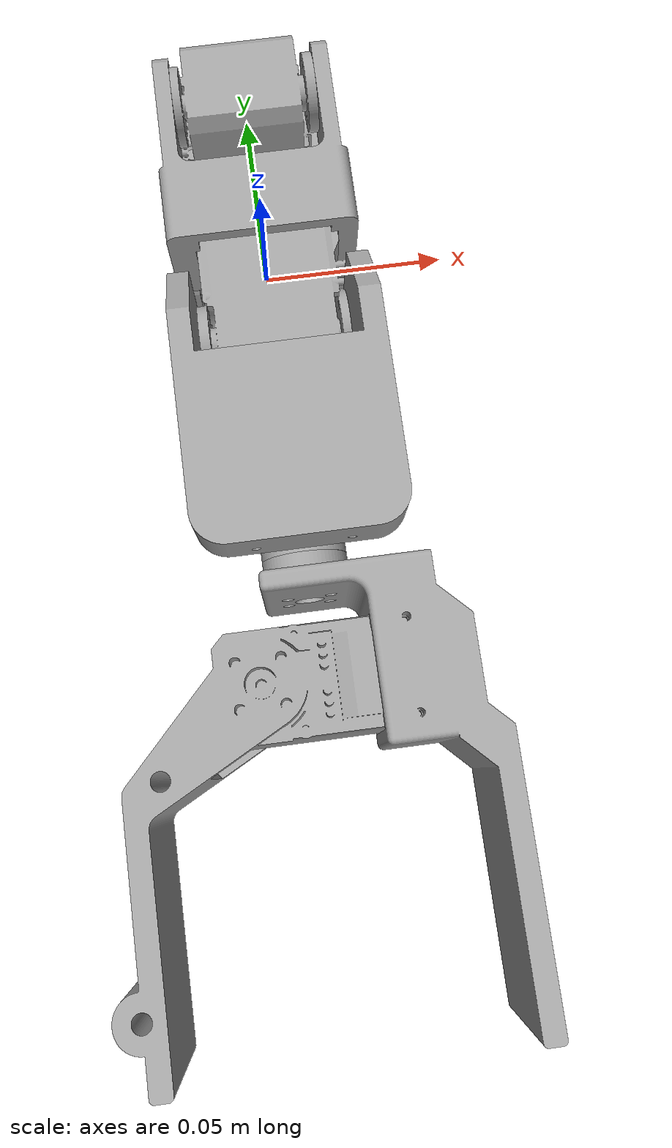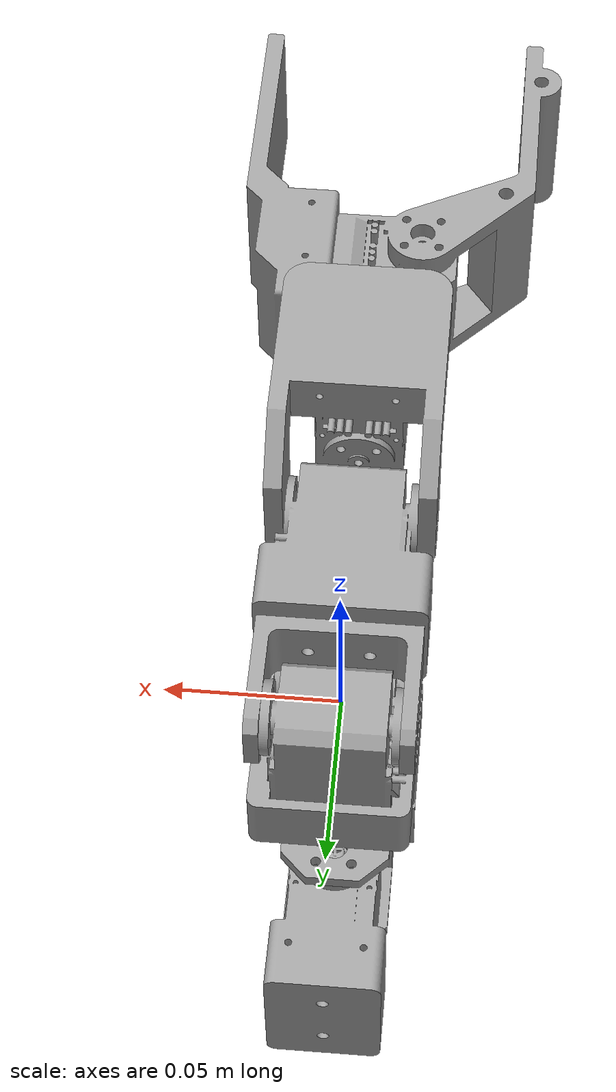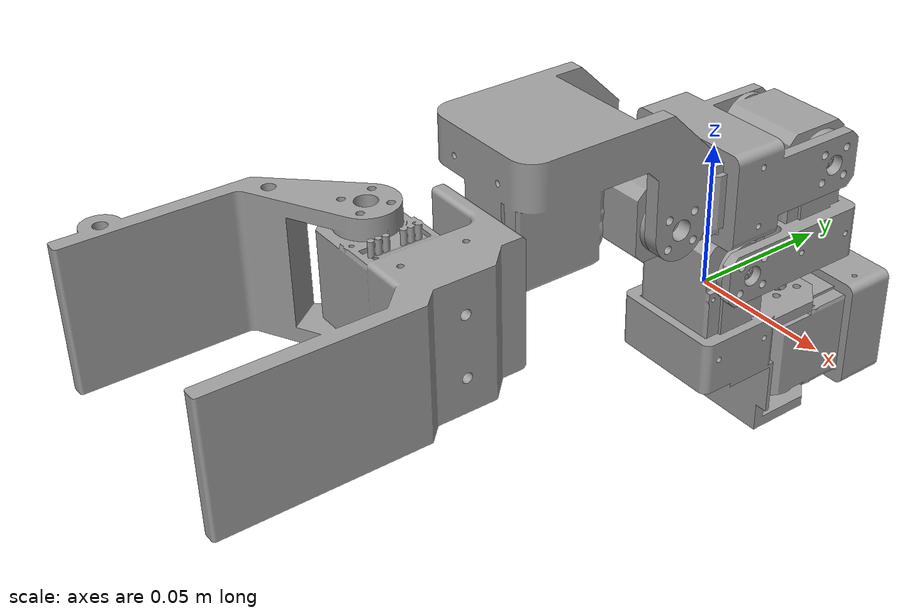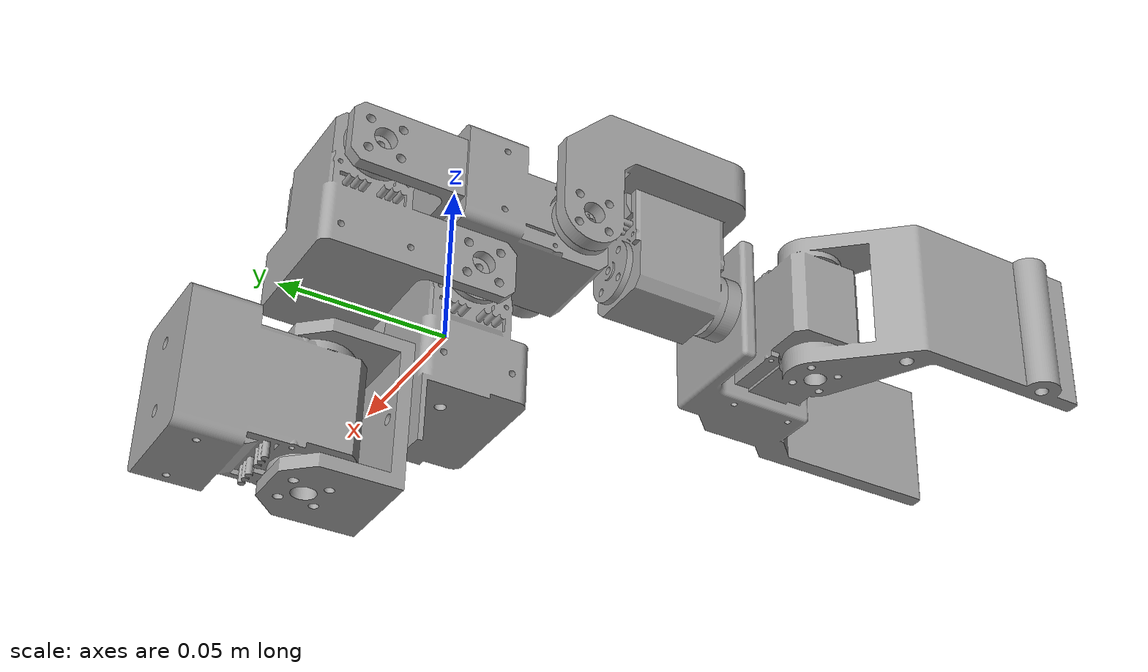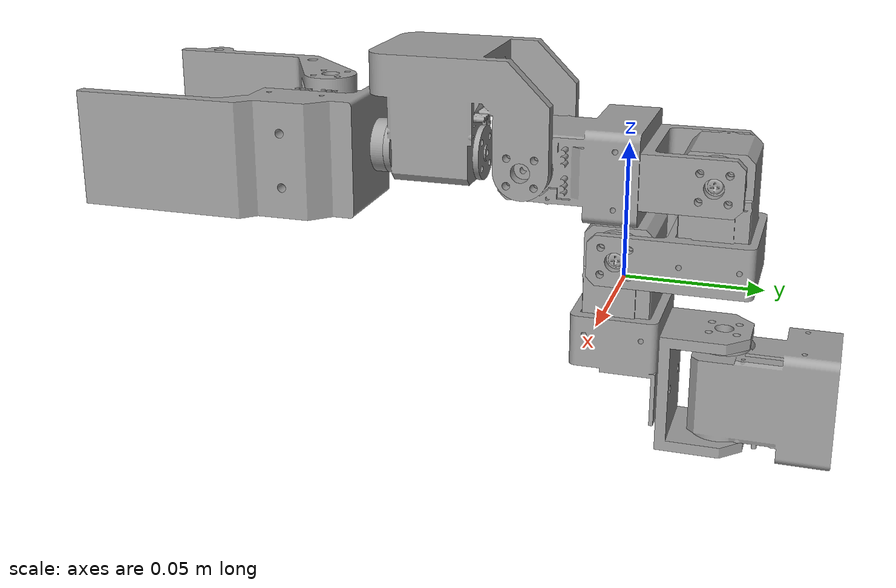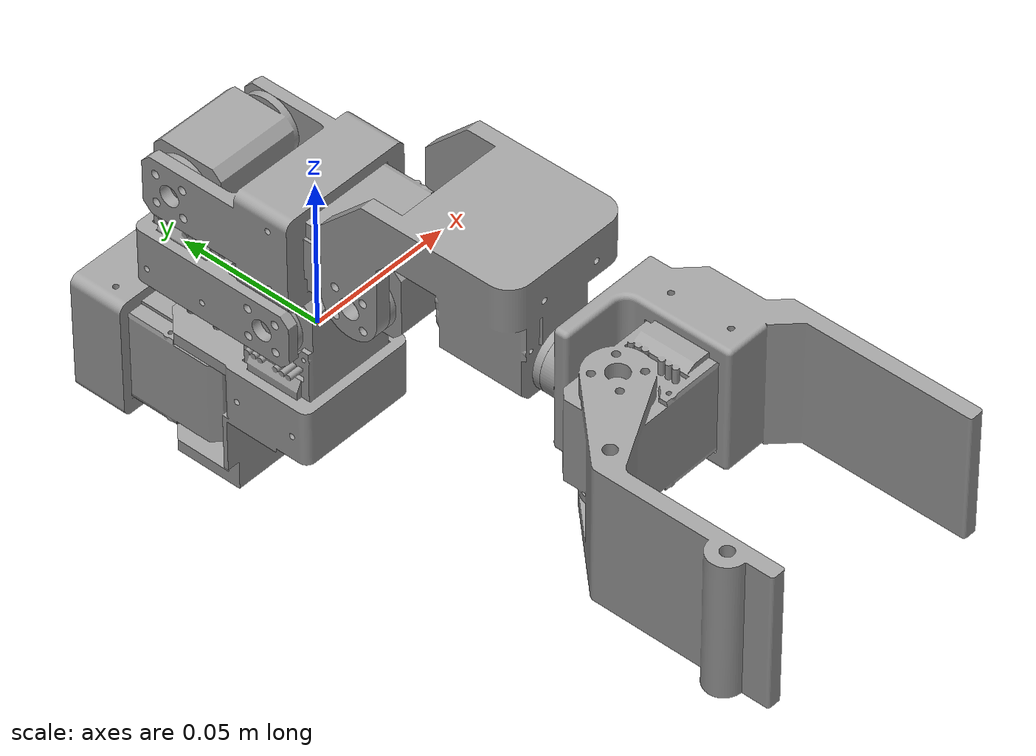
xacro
<?xml version="1.0" ?>
<robot name="arm_main" xmlns:xacro="http://www.ros.org/wiki/xacro">

<xacro:include filename="/home/keigo/komarm/urdf/materials.xacro" />
<xacro:include filename="/home/keigo/komarm/urdf/arm_main.trans" />
<link name="base_link">
  <inertial>
    <origin xyz="-0.0013499999845841886 0.05547364405613593 -0.03925880078129778" rpy="0 0 0"/>
    <mass value="0.3900830776668987"/>
    <inertia ixx="0.000131" iyy="7.1e-05" izz="0.000111" ixy="-0.0" iyz="2e-06" ixz="0.0"/>
  </inertial>
  <visual>
    <origin xyz="0 0 0" rpy="0 0 0"/>
    <geometry>
      <mesh filename="package://arm_main_description/meshes/base_link.stl" scale="0.001 0.001 0.001"/>
    </geometry>
    <material name="steel_satin"/>
  </visual>
  <collision>
    <origin xyz="0 0 0" rpy="0 0 0"/>
    <geometry>
      <mesh filename="package://arm_main_description/meshes/base_link.stl" scale="0.001 0.001 0.001"/>
    </geometry>
  </collision>
</link>

<link name="servo_holder2_v9_1">
  <inertial>
    <origin xyz="-0.022087999236917965 -0.042450935490717844 1.2480391720082196e-11" rpy="0 0 0"/>
    <mass value="0.4815312282713089"/>
    <inertia ixx="0.000189" iyy="0.000107" izz="0.000233" ixy="1e-06" iyz="-0.0" ixz="-0.0"/>
  </inertial>
  <visual>
    <origin xyz="-0.0217 -0.0324 -0.04195" rpy="0 0 0"/>
    <geometry>
      <mesh filename="package://arm_main_description/meshes/servo_holder2_v9_1.stl" scale="0.001 0.001 0.001"/>
    </geometry>
    <material name="steel_satin"/>
  </visual>
  <collision>
    <origin xyz="-0.0217 -0.0324 -0.04195" rpy="0 0 0"/>
    <geometry>
      <mesh filename="package://arm_main_description/meshes/servo_holder2_v9_1.stl" scale="0.001 0.001 0.001"/>
    </geometry>
  </collision>
</link>

<link name="hand_rotation_v13_4">
  <inertial>
    <origin xyz="-0.023199999989310653 -0.03180704370383808 0.018913049005446277" rpy="0 0 0"/>
    <mass value="0.49875676728406393"/>
    <inertia ixx="0.000221" iyy="0.000177" izz="0.0002" ixy="-0.0" iyz="7e-06" ixz="-0.0"/>
  </inertial>
  <visual>
    <origin xyz="-0.0227 0.0338 -0.04195" rpy="0 0 0"/>
    <geometry>
      <mesh filename="package://arm_main_description/meshes/hand_rotation_v13_4.stl" scale="0.001 0.001 0.001"/>
    </geometry>
    <material name="steel_satin"/>
  </visual>
  <collision>
    <origin xyz="-0.0227 0.0338 -0.04195" rpy="0 0 0"/>
    <geometry>
      <mesh filename="package://arm_main_description/meshes/hand_rotation_v13_4.stl" scale="0.001 0.001 0.001"/>
    </geometry>
  </collision>
</link>

<link name="hand_v17_1">
  <inertial>
    <origin xyz="0.0018876663935760566 -0.04171122715355233 1.0007712861637152e-05" rpy="0 0 0"/>
    <mass value="0.8585184504197826"/>
    <inertia ixx="0.000709" iyy="0.000757" izz="0.001205" ixy="-0.000142" iyz="-2e-06" ixz="-8e-06"/>
  </inertial>
  <visual>
    <origin xyz="0.0005 0.0892 -0.04195" rpy="0 0 0"/>
    <geometry>
      <mesh filename="package://arm_main_description/meshes/hand_v17_1.stl" scale="0.001 0.001 0.001"/>
    </geometry>
    <material name="steel_satin"/>
  </visual>
  <collision>
    <origin xyz="0.0005 0.0892 -0.04195" rpy="0 0 0"/>
    <geometry>
      <mesh filename="package://arm_main_description/meshes/hand_v17_1.stl" scale="0.001 0.001 0.001"/>
    </geometry>
  </collision>
</link>

<link name="servo_holder_v23_3">
  <inertial>
    <origin xyz="-0.021805779723410443 0.030701332587508144 0.01143066713838994" rpy="0 0 0"/>
    <mass value="0.39894172696668956"/>
    <inertia ixx="0.000121" iyy="0.000134" izz="9.8e-05" ixy="0.0" iyz="-8e-06" ixz="1e-06"/>
  </inertial>
  <visual>
    <origin xyz="-0.0212 -0.0 -0.0125" rpy="0 0 0"/>
    <geometry>
      <mesh filename="package://arm_main_description/meshes/servo_holder_v23_3.stl" scale="0.001 0.001 0.001"/>
    </geometry>
    <material name="steel_satin"/>
  </visual>
  <collision>
    <origin xyz="-0.0212 -0.0 -0.0125" rpy="0 0 0"/>
    <geometry>
      <mesh filename="package://arm_main_description/meshes/servo_holder_v23_3.stl" scale="0.001 0.001 0.001"/>
    </geometry>
  </collision>
</link>

<link name="base_mount_v2_1">
  <inertial>
    <origin xyz="0.00023028138914044723 -0.03219987847844947 0.0037687224019273234" rpy="0 0 0"/>
    <mass value="0.4932742844219664"/>
    <inertia ixx="0.000272" iyy="0.000248" izz="0.000132" ixy="1e-06" iyz="6e-05" ixz="-2e-06"/>
  </inertial>
  <visual>
    <origin xyz="0.00135 -0.0369 0.0165" rpy="0 0 0"/>
    <geometry>
      <mesh filename="package://arm_main_description/meshes/base_mount_v2_1.stl" scale="0.001 0.001 0.001"/>
    </geometry>
    <material name="steel_satin"/>
  </visual>
  <collision>
    <origin xyz="0.00135 -0.0369 0.0165" rpy="0 0 0"/>
    <geometry>
      <mesh filename="package://arm_main_description/meshes/base_mount_v2_1.stl" scale="0.001 0.001 0.001"/>
    </geometry>
  </collision>
</link>

<joint name="Revolute 7" type="revolute">
  <origin xyz="0.0005 0.0324 0.02945" rpy="0 0 0"/>
  <parent link="servo_holder_v23_3"/>
  <child link="servo_holder2_v9_1"/>
  <axis xyz="1.0 -0.0 0.0"/>
  <limit upper="0.0" lower="-3.141593" effort="100" velocity="100"/>
</joint>

<joint name="Revolute 8" type="revolute">
  <origin xyz="0.001 -0.0662 0.0" rpy="0 0 0"/>
  <parent link="servo_holder2_v9_1"/>
  <child link="hand_rotation_v13_4"/>
  <axis xyz="1.0 0.0 0.0"/>
  <limit upper="1.570796" lower="-0.349066" effort="100" velocity="100"/>
</joint>

<joint name="Revolute 9" type="continuous">
  <origin xyz="-0.0232 -0.0554 0.0" rpy="0 0 0"/>
  <parent link="hand_rotation_v13_4"/>
  <child link="hand_v17_1"/>
  <axis xyz="-0.0 1.0 0.0"/>
</joint>

<joint name="Revolute 11" type="revolute">
  <origin xyz="0.02255 -0.0369 0.029" rpy="0 0 0"/>
  <parent link="base_mount_v2_1"/>
  <child link="servo_holder_v23_3"/>
  <axis xyz="-1.0 -0.0 -0.0"/>
  <limit upper="0.0" lower="-3.141593" effort="100" velocity="100"/>
</joint>

<joint name="Revolute 12" type="revolute">
  <origin xyz="-0.00135 0.0369 -0.0165" rpy="0 0 0"/>
  <parent link="base_link"/>
  <child link="base_mount_v2_1"/>
  <axis xyz="0.0 -0.0 -1.0"/>
  <limit upper="1.570796" lower="-1.570796" effort="100" velocity="100"/>
</joint>

</robot>

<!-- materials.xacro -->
<robot name="arm_main" xmlns:xacro="http://www.ros.org/wiki/xacro" >

<material name="silver_default">
  <color rgba="0.700 0.700 0.700 1.000"/>
</material>
<material name="steel_satin">
  <color rgba="0.6274509803921569 0.6274509803921569 0.6274509803921569 1.0"/>
</material>

</robot>
